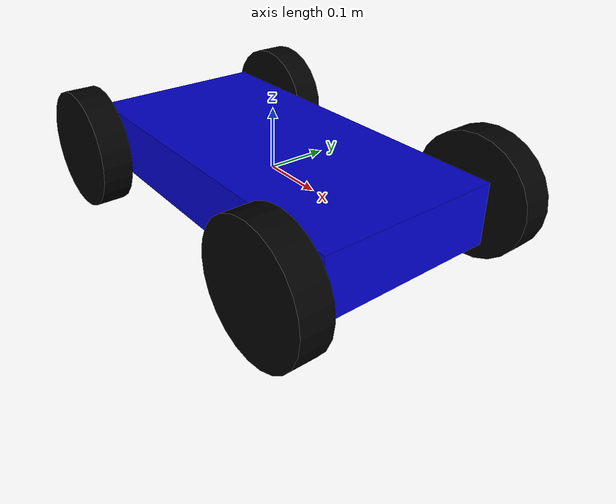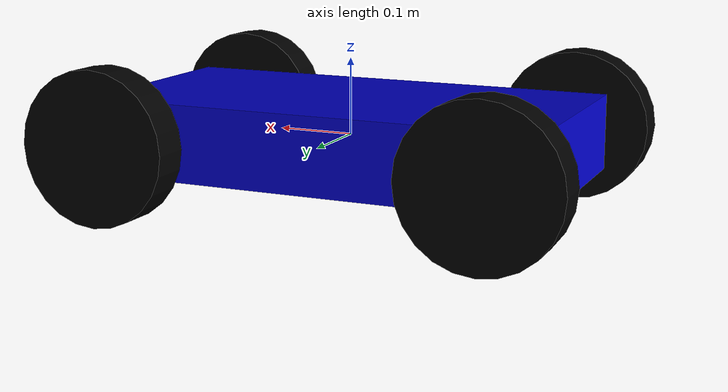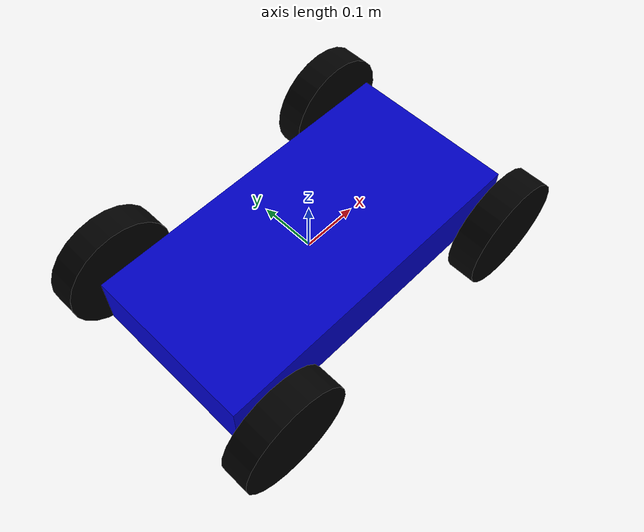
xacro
<?xml version="1.0"?>
<robot name="ackermann_robot" xmlns:xacro="http://www.ros.org/wiki/xacro">

  <xacro:include filename="ackermann_control.xacro" />
  <xacro:property name="wheel_radius" value="0.1" />
  <xacro:property name="wheel_width" value="0.05" />
  <xacro:property name="wheelbase" value="0.5" />
  <xacro:property name="track_width" value="0.4" />
  <xacro:property name="base_len" value="0.6" />
  <xacro:property name="base_width" value="0.3" />
  <xacro:property name="base_height" value="0.1" />

  <material name="blue"><color rgba="0 0 0.8 1"/></material>
  <material name="black"><color rgba="0 0 0 1"/></material>

  <link name="base_link">
    <visual>
      <geometry><box size="${base_len} ${base_width} ${base_height}"/></geometry>
      <material name="blue"/>
    </visual>
    <collision>
      <geometry><box size="${base_len} ${base_width} ${base_height}"/></geometry>
    </collision>
    <inertial>
      <mass value="10.0"/>
      <inertia ixx="0.1" ixy="0" ixz="0" iyy="0.1" iyz="0" izz="0.1"/>
    </inertial>
  </link>

  <xacro:macro name="rear_wheel" params="prefix reflect">
    <link name="rear_${prefix}_wheel">
      <visual>
        <origin xyz="0 0 0" rpy="${pi/2} 0 0"/>
        <geometry><cylinder radius="${wheel_radius}" length="${wheel_width}"/></geometry>
        <material name="black"/>
      </visual>
    </link>

    <joint name="rear_${prefix}_wheel_joint" type="continuous">
      <parent link="base_link"/>
      <child link="rear_${prefix}_wheel"/>
      <origin xyz="-${wheelbase/2} ${reflect * track_width/2} 0" rpy="0 0 0"/>
      <axis xyz="0 1 0"/>
    </joint>
  </xacro:macro>

  <xacro:rear_wheel prefix="left" reflect="1"/>
  <xacro:rear_wheel prefix="right" reflect="-1"/>

  <xacro:macro name="front_unit" params="prefix reflect">
    <link name="front_${prefix}_steer_link">
      <inertial>
        <mass value="0.5"/>
        <inertia ixx="0.01" ixy="0" ixz="0" iyy="0.01" iyz="0" izz="0.01"/>
      </inertial>
    </link>

    <joint name="front_${prefix}_steer_joint" type="revolute">
      <parent link="base_link"/>
      <child link="front_${prefix}_steer_link"/>
      <origin xyz="${wheelbase/2} ${reflect * track_width/2} 0" rpy="0 0 0"/>
      <axis xyz="0 0 1"/>
      <limit lower="-0.6" upper="0.6" effort="10" velocity="1.0"/>
    </joint>

    <link name="front_${prefix}_wheel">
      <visual>
        <origin xyz="0 0 0" rpy="${pi/2} 0 0"/>
        <geometry><cylinder radius="${wheel_radius}" length="${wheel_width}"/></geometry>
        <material name="black"/>
      </visual>
    </link>

    <joint name="front_${prefix}_wheel_joint" type="continuous">
      <parent link="front_${prefix}_steer_link"/>
      <child link="front_${prefix}_wheel"/>
      <origin xyz="0 0 0" rpy="0 0 0"/>
      <axis xyz="0 1 0"/>
    </joint>
  </xacro:macro>

  <xacro:front_unit prefix="left" reflect="1"/>
  <xacro:front_unit prefix="right" reflect="-1"/>

</robot>
